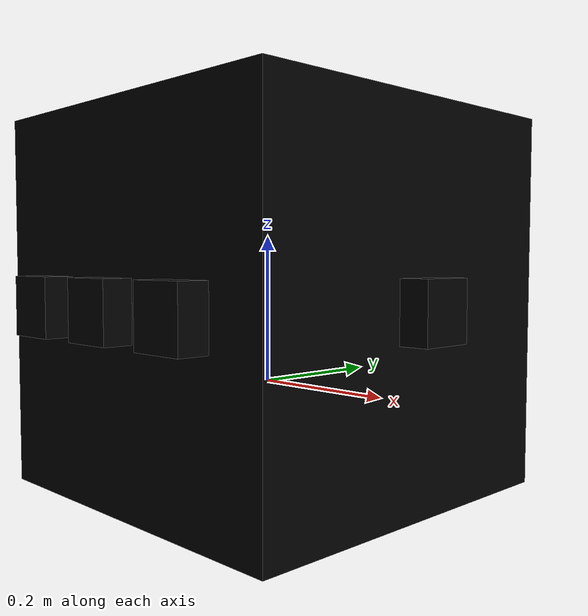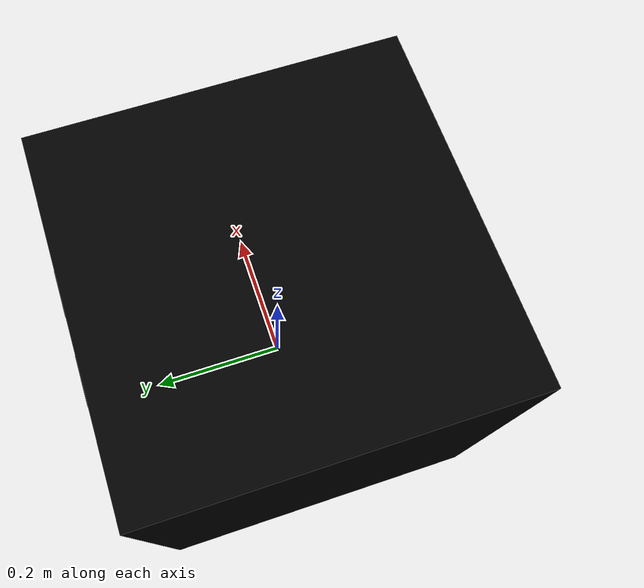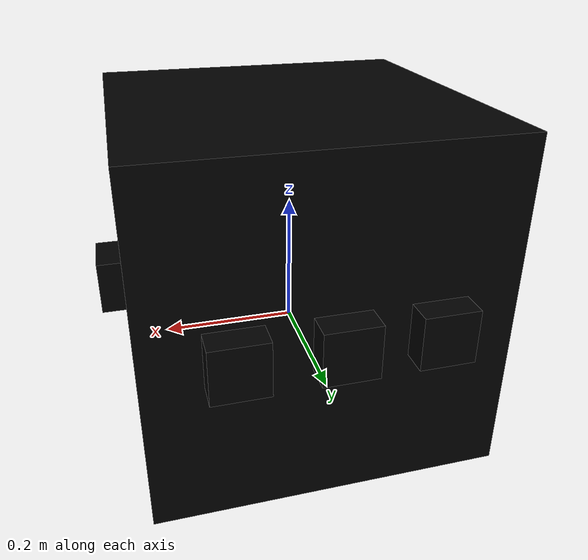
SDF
<?xml version='1.0'?>
<sdf version='1.6'>
  <model name='bot_demo'>
    <link name='hull'>
      <pose frame=''>0.004745 0.002289 0.10857 0 -0 0</pose>
      <inertial>
        <mass>9.55</mass>
        <inertia>
          <ixx>0.166667</ixx>
          <ixy>0</ixy>
          <ixz>0</ixz>
          <iyy>0.166667</iyy>
          <iyz>0</iyz>
          <izz>0.166667</izz>
        </inertia>
        <pose frame=''>0 0 0 0 -0 0</pose>
      </inertial>
      <self_collide>0</self_collide>
      <kinematic>0</kinematic>
      <gravity>1</gravity>
      <enable_wind>0</enable_wind>
      <visual name='visual'>
        <pose frame=''>0 0 0 0 -0 0</pose>
        <geometry>
          <box>
            <size>0.5 0.5 0.5</size>
          </box>
        </geometry>
        <material>
          <ambient>0 0 0 1</ambient>
          <diffuse>0 0 0 1</diffuse>
          <specular>0 0 0 1</specular>
          <emissive>0 0 0 1</emissive>
          <script>
            <name>ModelPreview_1::hull::visual_MATERIAL_</name>
            <uri>__default__</uri>
          </script>
        </material>
        <transparency>0</transparency>
        <cast_shadows>1</cast_shadows>
      </visual>
      <collision name='collision'>
        <laser_retro>0</laser_retro>
        <max_contacts>10</max_contacts>
        <pose frame=''>0 0 0 0 -0 0</pose>
        <geometry>
          <box>
            <size>0.5 0.5 0.5</size>
          </box>
        </geometry>
        <surface>
          <friction>
            <ode>
              <mu>1</mu>
              <mu2>1</mu2>
              <fdir1>0 0 0</fdir1>
              <slip1>0</slip1>
              <slip2>0</slip2>
            </ode>
            <torsional>
              <coefficient>1</coefficient>
              <patch_radius>0</patch_radius>
              <surface_radius>0</surface_radius>
              <use_patch_radius>1</use_patch_radius>
              <ode>
                <slip>0</slip>
              </ode>
            </torsional>
          </friction>
          <bounce>
            <restitution_coefficient>0</restitution_coefficient>
            <threshold>1e+06</threshold>
          </bounce>
          <contact>
            <collide_without_contact>0</collide_without_contact>
            <collide_without_contact_bitmask>1</collide_without_contact_bitmask>
            <collide_bitmask>1</collide_bitmask>
            <ode>
              <soft_cfm>0</soft_cfm>
              <soft_erp>0.2</soft_erp>
              <kp>1e+13</kp>
              <kd>1</kd>
              <max_vel>0.01</max_vel>
              <min_depth>0</min_depth>
            </ode>
            <bullet>
              <split_impulse>1</split_impulse>
              <split_impulse_penetration_threshold>-0.01</split_impulse_penetration_threshold>
              <soft_cfm>0</soft_cfm>
              <soft_erp>0.2</soft_erp>
              <kp>1e+13</kp>
              <kd>1</kd>
            </bullet>
          </contact>
        </surface>
      </collision>
    </link>
    <link name='thruster_1'>
      <pose frame=''>-0.132492 0.251268 0.10857 0 -0 0</pose>
      <inertial>
        <mass>0.39</mass>
        <inertia>
          <ixx>0.166667</ixx>
          <ixy>0</ixy>
          <ixz>0</ixz>
          <iyy>0.166667</iyy>
          <iyz>0</iyz>
          <izz>0.166667</izz>
        </inertia>
        <pose frame=''>0 0 0 0 -0 0</pose>
      </inertial>
      <self_collide>0</self_collide>
      <kinematic>0</kinematic>
      <gravity>1</gravity>
      <enable_wind>0</enable_wind>
      <visual name='visual'>
        <pose frame=''>0 0 0 0 -0 0</pose>
        <geometry>
          <box>
            <size>0.077 0.077 0.077</size>
          </box>
        </geometry>
        <material>
          <ambient>0 0 0 1</ambient>
          <diffuse>0 0 0 1</diffuse>
          <specular>0 0 0 1</specular>
          <emissive>1 1 1 1</emissive>
          <script>
            <name>ModelPreview_1::thruster_1::visual_MATERIAL_</name>
            <uri>__default__</uri>
          </script>
        </material>
        <transparency>0</transparency>
        <cast_shadows>1</cast_shadows>
      </visual>
      <collision name='collision'>
        <laser_retro>0</laser_retro>
        <max_contacts>10</max_contacts>
        <pose frame=''>0 0 0 0 -0 0</pose>
        <geometry>
          <box>
            <size>0.077 0.077 0.077</size>
          </box>
        </geometry>
        <surface>
          <friction>
            <ode>
              <mu>1</mu>
              <mu2>1</mu2>
              <fdir1>0 0 0</fdir1>
              <slip1>0</slip1>
              <slip2>0</slip2>
            </ode>
            <torsional>
              <coefficient>1</coefficient>
              <patch_radius>0</patch_radius>
              <surface_radius>0</surface_radius>
              <use_patch_radius>1</use_patch_radius>
              <ode>
                <slip>0</slip>
              </ode>
            </torsional>
          </friction>
          <bounce>
            <restitution_coefficient>0</restitution_coefficient>
            <threshold>1e+06</threshold>
          </bounce>
          <contact>
            <collide_without_contact>0</collide_without_contact>
            <collide_without_contact_bitmask>1</collide_without_contact_bitmask>
            <collide_bitmask>1</collide_bitmask>
            <ode>
              <soft_cfm>0</soft_cfm>
              <soft_erp>0.2</soft_erp>
              <kp>1e+13</kp>
              <kd>1</kd>
              <max_vel>0.01</max_vel>
              <min_depth>0</min_depth>
            </ode>
            <bullet>
              <split_impulse>1</split_impulse>
              <split_impulse_penetration_threshold>-0.01</split_impulse_penetration_threshold>
              <soft_cfm>0</soft_cfm>
              <soft_erp>0.2</soft_erp>
              <kp>1e+13</kp>
              <kd>1</kd>
            </bullet>
          </contact>
        </surface>
      </collision>
    </link>
    <link name='thruster_2'>
      <pose frame=''>-0.134788 -0.247148 0.10857 0 -0 0</pose>
      <inertial>
        <mass>0.39</mass>
        <inertia>
          <ixx>0.166667</ixx>
          <ixy>0</ixy>
          <ixz>0</ixz>
          <iyy>0.166667</iyy>
          <iyz>0</iyz>
          <izz>0.166667</izz>
        </inertia>
        <pose frame=''>0 0 0 0 -0 0</pose>
      </inertial>
      <self_collide>0</self_collide>
      <kinematic>0</kinematic>
      <gravity>1</gravity>
      <enable_wind>0</enable_wind>
      <visual name='visual'>
        <pose frame=''>0 0 0 0 -0 0</pose>
        <geometry>
          <box>
            <size>0.077 0.077 0.077</size>
          </box>
        </geometry>
        <material>
          <ambient>0 0 0 1</ambient>
          <diffuse>0 0 0 1</diffuse>
          <specular>0 0 0 1</specular>
          <emissive>1 1 1 1</emissive>
          <script>
            <name>ModelPreview_1::thruster_2::visual_MATERIAL_</name>
            <uri>__default__</uri>
          </script>
        </material>
        <transparency>0</transparency>
        <cast_shadows>1</cast_shadows>
      </visual>
      <collision name='collision'>
        <laser_retro>0</laser_retro>
        <max_contacts>10</max_contacts>
        <pose frame=''>0 0 0 0 -0 0</pose>
        <geometry>
          <box>
            <size>0.077 0.077 0.077</size>
          </box>
        </geometry>
        <surface>
          <friction>
            <ode>
              <mu>1</mu>
              <mu2>1</mu2>
              <fdir1>0 0 0</fdir1>
              <slip1>0</slip1>
              <slip2>0</slip2>
            </ode>
            <torsional>
              <coefficient>1</coefficient>
              <patch_radius>0</patch_radius>
              <surface_radius>0</surface_radius>
              <use_patch_radius>1</use_patch_radius>
              <ode>
                <slip>0</slip>
              </ode>
            </torsional>
          </friction>
          <bounce>
            <restitution_coefficient>0</restitution_coefficient>
            <threshold>1e+06</threshold>
          </bounce>
          <contact>
            <collide_without_contact>0</collide_without_contact>
            <collide_without_contact_bitmask>1</collide_without_contact_bitmask>
            <collide_bitmask>1</collide_bitmask>
            <ode>
              <soft_cfm>0</soft_cfm>
              <soft_erp>0.2</soft_erp>
              <kp>1e+13</kp>
              <kd>1</kd>
              <max_vel>0.01</max_vel>
              <min_depth>0</min_depth>
            </ode>
            <bullet>
              <split_impulse>1</split_impulse>
              <split_impulse_penetration_threshold>-0.01</split_impulse_penetration_threshold>
              <soft_cfm>0</soft_cfm>
              <soft_erp>0.2</soft_erp>
              <kp>1e+13</kp>
              <kd>1</kd>
            </bullet>
          </contact>
        </surface>
      </collision>
    </link>
    <link name='thruster_3'>
      <pose frame=''>0.254286 0.002289 0.10857 0 -0 0</pose>
      <inertial>
        <mass>0.39</mass>
        <inertia>
          <ixx>0.166667</ixx>
          <ixy>0</ixy>
          <ixz>0</ixz>
          <iyy>0.166667</iyy>
          <iyz>0</iyz>
          <izz>0.166667</izz>
        </inertia>
        <pose frame=''>0 0 0 0 -0 0</pose>
      </inertial>
      <self_collide>0</self_collide>
      <kinematic>0</kinematic>
      <gravity>1</gravity>
      <enable_wind>0</enable_wind>
      <visual name='visual'>
        <pose frame=''>0 0 0 0 -0 0</pose>
        <geometry>
          <box>
            <size>0.077 0.077 0.077</size>
          </box>
        </geometry>
        <material>
          <ambient>0 0 0 1</ambient>
          <diffuse>0 0 0 1</diffuse>
          <specular>0 0 0 1</specular>
          <emissive>1 1 1 1</emissive>
          <script>
            <name>ModelPreview_1::thruster_3::visual_MATERIAL_</name>
            <uri>__default__</uri>
          </script>
        </material>
        <transparency>0</transparency>
        <cast_shadows>1</cast_shadows>
      </visual>
      <collision name='collision'>
        <laser_retro>0</laser_retro>
        <max_contacts>10</max_contacts>
        <pose frame=''>0 0 0 0 -0 0</pose>
        <geometry>
          <box>
            <size>0.077 0.077 0.077</size>
          </box>
        </geometry>
        <surface>
          <friction>
            <ode>
              <mu>1</mu>
              <mu2>1</mu2>
              <fdir1>0 0 0</fdir1>
              <slip1>0</slip1>
              <slip2>0</slip2>
            </ode>
            <torsional>
              <coefficient>1</coefficient>
              <patch_radius>0</patch_radius>
              <surface_radius>0</surface_radius>
              <use_patch_radius>1</use_patch_radius>
              <ode>
                <slip>0</slip>
              </ode>
            </torsional>
          </friction>
          <bounce>
            <restitution_coefficient>0</restitution_coefficient>
            <threshold>1e+06</threshold>
          </bounce>
          <contact>
            <collide_without_contact>0</collide_without_contact>
            <collide_without_contact_bitmask>1</collide_without_contact_bitmask>
            <collide_bitmask>1</collide_bitmask>
            <ode>
              <soft_cfm>0</soft_cfm>
              <soft_erp>0.2</soft_erp>
              <kp>1e+13</kp>
              <kd>1</kd>
              <max_vel>0.01</max_vel>
              <min_depth>0</min_depth>
            </ode>
            <bullet>
              <split_impulse>1</split_impulse>
              <split_impulse_penetration_threshold>-0.01</split_impulse_penetration_threshold>
              <soft_cfm>0</soft_cfm>
              <soft_erp>0.2</soft_erp>
              <kp>1e+13</kp>
              <kd>1</kd>
            </bullet>
          </contact>
        </surface>
      </collision>
    </link>
    <link name='thruster_4'>
      <pose frame=''>-0.002381 0.252579 0.10857 0 -0 0</pose>
      <inertial>
        <mass>0.39</mass>
        <inertia>
          <ixx>0.166667</ixx>
          <ixy>0</ixy>
          <ixz>0</ixz>
          <iyy>0.166667</iyy>
          <iyz>0</iyz>
          <izz>0.166667</izz>
        </inertia>
        <pose frame=''>0 0 0 0 -0 0</pose>
      </inertial>
      <self_collide>0</self_collide>
      <kinematic>0</kinematic>
      <gravity>1</gravity>
      <enable_wind>0</enable_wind>
      <visual name='visual'>
        <pose frame=''>0 0 0 0 -0 0</pose>
        <geometry>
          <box>
            <size>0.077 0.077 0.077</size>
          </box>
        </geometry>
        <material>
          <ambient>0 0 0 1</ambient>
          <diffuse>0 0 0 1</diffuse>
          <specular>0 0 0 1</specular>
          <emissive>1 1 1 1</emissive>
          <script>
            <name>ModelPreview_1::thruster_4::visual_MATERIAL_</name>
            <uri>__default__</uri>
          </script>
        </material>
        <transparency>0</transparency>
        <cast_shadows>1</cast_shadows>
      </visual>
      <collision name='collision'>
        <laser_retro>0</laser_retro>
        <max_contacts>10</max_contacts>
        <pose frame=''>0 0 0 0 -0 0</pose>
        <geometry>
          <box>
            <size>0.077 0.077 0.077</size>
          </box>
        </geometry>
        <surface>
          <friction>
            <ode>
              <mu>1</mu>
              <mu2>1</mu2>
              <fdir1>0 0 0</fdir1>
              <slip1>0</slip1>
              <slip2>0</slip2>
            </ode>
            <torsional>
              <coefficient>1</coefficient>
              <patch_radius>0</patch_radius>
              <surface_radius>0</surface_radius>
              <use_patch_radius>1</use_patch_radius>
              <ode>
                <slip>0</slip>
              </ode>
            </torsional>
          </friction>
          <bounce>
            <restitution_coefficient>0</restitution_coefficient>
            <threshold>1e+06</threshold>
          </bounce>
          <contact>
            <collide_without_contact>0</collide_without_contact>
            <collide_without_contact_bitmask>1</collide_without_contact_bitmask>
            <collide_bitmask>1</collide_bitmask>
            <ode>
              <soft_cfm>0</soft_cfm>
              <soft_erp>0.2</soft_erp>
              <kp>1e+13</kp>
              <kd>1</kd>
              <max_vel>0.01</max_vel>
              <min_depth>0</min_depth>
            </ode>
            <bullet>
              <split_impulse>1</split_impulse>
              <split_impulse_penetration_threshold>-0.01</split_impulse_penetration_threshold>
              <soft_cfm>0</soft_cfm>
              <soft_erp>0.2</soft_erp>
              <kp>1e+13</kp>
              <kd>1</kd>
            </bullet>
          </contact>
        </surface>
      </collision>
    </link>
    <link name='thruster_5'>
      <pose frame=''>-0.002381 -0.247148 0.10857 0 -0 0</pose>
      <inertial>
        <mass>0.39</mass>
        <inertia>
          <ixx>0.166667</ixx>
          <ixy>0</ixy>
          <ixz>0</ixz>
          <iyy>0.166667</iyy>
          <iyz>0</iyz>
          <izz>0.166667</izz>
        </inertia>
        <pose frame=''>0 0 0 0 -0 0</pose>
      </inertial>
      <self_collide>0</self_collide>
      <kinematic>0</kinematic>
      <gravity>1</gravity>
      <enable_wind>0</enable_wind>
      <visual name='visual'>
        <pose frame=''>0 0 0 0 -0 0</pose>
        <geometry>
          <box>
            <size>0.077 0.077 0.077</size>
          </box>
        </geometry>
        <material>
          <ambient>0 0 0 1</ambient>
          <diffuse>0 0 0 1</diffuse>
          <specular>0 0 0 1</specular>
          <emissive>1 1 1 1</emissive>
          <script>
            <name>ModelPreview_1::thruster_5::visual_MATERIAL_</name>
            <uri>__default__</uri>
          </script>
        </material>
        <transparency>0</transparency>
        <cast_shadows>1</cast_shadows>
      </visual>
      <collision name='collision'>
        <laser_retro>0</laser_retro>
        <max_contacts>10</max_contacts>
        <pose frame=''>0 0 0 0 -0 0</pose>
        <geometry>
          <box>
            <size>0.077 0.077 0.077</size>
          </box>
        </geometry>
        <surface>
          <friction>
            <ode>
              <mu>1</mu>
              <mu2>1</mu2>
              <fdir1>0 0 0</fdir1>
              <slip1>0</slip1>
              <slip2>0</slip2>
            </ode>
            <torsional>
              <coefficient>1</coefficient>
              <patch_radius>0</patch_radius>
              <surface_radius>0</surface_radius>
              <use_patch_radius>1</use_patch_radius>
              <ode>
                <slip>0</slip>
              </ode>
            </torsional>
          </friction>
          <bounce>
            <restitution_coefficient>0</restitution_coefficient>
            <threshold>1e+06</threshold>
          </bounce>
          <contact>
            <collide_without_contact>0</collide_without_contact>
            <collide_without_contact_bitmask>1</collide_without_contact_bitmask>
            <collide_bitmask>1</collide_bitmask>
            <ode>
              <soft_cfm>0</soft_cfm>
              <soft_erp>0.2</soft_erp>
              <kp>1e+13</kp>
              <kd>1</kd>
              <max_vel>0.01</max_vel>
              <min_depth>0</min_depth>
            </ode>
            <bullet>
              <split_impulse>1</split_impulse>
              <split_impulse_penetration_threshold>-0.01</split_impulse_penetration_threshold>
              <soft_cfm>0</soft_cfm>
              <soft_erp>0.2</soft_erp>
              <kp>1e+13</kp>
              <kd>1</kd>
            </bullet>
          </contact>
        </surface>
      </collision>
    </link>
    <link name='thruster_6'>
      <pose frame=''>0.004745 0.002289 -0.140467 0 -0 0</pose>
      <inertial>
        <mass>0.39</mass>
        <inertia>
          <ixx>0.166667</ixx>
          <ixy>0</ixy>
          <ixz>0</ixz>
          <iyy>0.166667</iyy>
          <iyz>0</iyz>
          <izz>0.166667</izz>
        </inertia>
        <pose frame=''>0 0 0 0 -0 0</pose>
      </inertial>
      <self_collide>0</self_collide>
      <kinematic>0</kinematic>
      <gravity>1</gravity>
      <enable_wind>0</enable_wind>
      <visual name='visual'>
        <pose frame=''>0 0 0 0 -0 0</pose>
        <geometry>
          <box>
            <size>0.077 0.077 0.077</size>
          </box>
        </geometry>
        <material>
          <ambient>0 0 0 1</ambient>
          <diffuse>0 0 0 1</diffuse>
          <specular>0 0 0 1</specular>
          <emissive>1 1 1 1</emissive>
          <script>
            <name>ModelPreview_1::thruster_6::visual_MATERIAL_</name>
            <uri>__default__</uri>
          </script>
        </material>
        <transparency>0</transparency>
        <cast_shadows>1</cast_shadows>
      </visual>
      <collision name='collision'>
        <laser_retro>0</laser_retro>
        <max_contacts>10</max_contacts>
        <pose frame=''>0 0 0 0 -0 0</pose>
        <geometry>
          <box>
            <size>0.077 0.077 0.077</size>
          </box>
        </geometry>
        <surface>
          <friction>
            <ode>
              <mu>1</mu>
              <mu2>1</mu2>
              <fdir1>0 0 0</fdir1>
              <slip1>0</slip1>
              <slip2>0</slip2>
            </ode>
            <torsional>
              <coefficient>1</coefficient>
              <patch_radius>0</patch_radius>
              <surface_radius>0</surface_radius>
              <use_patch_radius>1</use_patch_radius>
              <ode>
                <slip>0</slip>
              </ode>
            </torsional>
          </friction>
          <bounce>
            <restitution_coefficient>0</restitution_coefficient>
            <threshold>1e+06</threshold>
          </bounce>
          <contact>
            <collide_without_contact>0</collide_without_contact>
            <collide_without_contact_bitmask>1</collide_without_contact_bitmask>
            <collide_bitmask>1</collide_bitmask>
            <ode>
              <soft_cfm>0</soft_cfm>
              <soft_erp>0.2</soft_erp>
              <kp>1e+13</kp>
              <kd>1</kd>
              <max_vel>0.01</max_vel>
              <min_depth>0</min_depth>
            </ode>
            <bullet>
              <split_impulse>1</split_impulse>
              <split_impulse_penetration_threshold>-0.01</split_impulse_penetration_threshold>
              <soft_cfm>0</soft_cfm>
              <soft_erp>0.2</soft_erp>
              <kp>1e+13</kp>
              <kd>1</kd>
            </bullet>
          </contact>
        </surface>
      </collision>
    </link>
    <link name='thruster_p4'>
      <pose frame=''>0.136164 0.252586 0.10857 0 -0 0</pose>
      <inertial>
        <mass>0.39</mass>
        <inertia>
          <ixx>0.166667</ixx>
          <ixy>0</ixy>
          <ixz>0</ixz>
          <iyy>0.166667</iyy>
          <iyz>0</iyz>
          <izz>0.166667</izz>
        </inertia>
        <pose frame=''>0 0 0 0 -0 0</pose>
      </inertial>
      <self_collide>0</self_collide>
      <kinematic>0</kinematic>
      <gravity>1</gravity>
      <enable_wind>0</enable_wind>
      <visual name='visual'>
        <pose frame=''>0 0 0 0 -0 0</pose>
        <geometry>
          <box>
            <size>0.077 0.077 0.077</size>
          </box>
        </geometry>
        <material>
          <ambient>0 0 0 1</ambient>
          <diffuse>0 0 0 1</diffuse>
          <specular>0 0 0 1</specular>
          <emissive>1 1 1 1</emissive>
          <script>
            <name>ModelPreview_1::thruster_p4::visual_MATERIAL_</name>
            <uri>__default__</uri>
          </script>
        </material>
        <transparency>0</transparency>
        <cast_shadows>1</cast_shadows>
      </visual>
      <collision name='collision'>
        <laser_retro>0</laser_retro>
        <max_contacts>10</max_contacts>
        <pose frame=''>0 0 0 0 -0 0</pose>
        <geometry>
          <box>
            <size>0.077 0.077 0.077</size>
          </box>
        </geometry>
        <surface>
          <friction>
            <ode>
              <mu>1</mu>
              <mu2>1</mu2>
              <fdir1>0 0 0</fdir1>
              <slip1>0</slip1>
              <slip2>0</slip2>
            </ode>
            <torsional>
              <coefficient>1</coefficient>
              <patch_radius>0</patch_radius>
              <surface_radius>0</surface_radius>
              <use_patch_radius>1</use_patch_radius>
              <ode>
                <slip>0</slip>
              </ode>
            </torsional>
          </friction>
          <bounce>
            <restitution_coefficient>0</restitution_coefficient>
            <threshold>1e+06</threshold>
          </bounce>
          <contact>
            <collide_without_contact>0</collide_without_contact>
            <collide_without_contact_bitmask>1</collide_without_contact_bitmask>
            <collide_bitmask>1</collide_bitmask>
            <ode>
              <soft_cfm>0</soft_cfm>
              <soft_erp>0.2</soft_erp>
              <kp>1e+13</kp>
              <kd>1</kd>
              <max_vel>0.01</max_vel>
              <min_depth>0</min_depth>
            </ode>
            <bullet>
              <split_impulse>1</split_impulse>
              <split_impulse_penetration_threshold>-0.01</split_impulse_penetration_threshold>
              <soft_cfm>0</soft_cfm>
              <soft_erp>0.2</soft_erp>
              <kp>1e+13</kp>
              <kd>1</kd>
            </bullet>
          </contact>
        </surface>
      </collision>
    </link>
    <link name='thruster_p5'>
      <pose frame=''>0.136043 -0.248527 0.10857 0 -0 0</pose>
      <inertial>
        <mass>0.39</mass>
        <inertia>
          <ixx>0.166667</ixx>
          <ixy>0</ixy>
          <ixz>0</ixz>
          <iyy>0.166667</iyy>
          <iyz>0</iyz>
          <izz>0.166667</izz>
        </inertia>
        <pose frame=''>0 0 0 0 -0 0</pose>
      </inertial>
      <self_collide>0</self_collide>
      <kinematic>0</kinematic>
      <gravity>1</gravity>
      <enable_wind>0</enable_wind>
      <visual name='visual'>
        <pose frame=''>0 0 0 0 -0 0</pose>
        <geometry>
          <box>
            <size>0.077 0.077 0.077</size>
          </box>
        </geometry>
        <material>
          <ambient>0 0 0 1</ambient>
          <diffuse>0 0 0 1</diffuse>
          <specular>0 0 0 1</specular>
          <emissive>1 1 1 1</emissive>
          <script>
            <name>ModelPreview_1::thruster_p5::visual_MATERIAL_</name>
            <uri>__default__</uri>
          </script>
        </material>
        <transparency>0</transparency>
        <cast_shadows>1</cast_shadows>
      </visual>
      <collision name='collision'>
        <laser_retro>0</laser_retro>
        <max_contacts>10</max_contacts>
        <pose frame=''>0 0 0 0 -0 0</pose>
        <geometry>
          <box>
            <size>0.077 0.077 0.077</size>
          </box>
        </geometry>
        <surface>
          <friction>
            <ode>
              <mu>1</mu>
              <mu2>1</mu2>
              <fdir1>0 0 0</fdir1>
              <slip1>0</slip1>
              <slip2>0</slip2>
            </ode>
            <torsional>
              <coefficient>1</coefficient>
              <patch_radius>0</patch_radius>
              <surface_radius>0</surface_radius>
              <use_patch_radius>1</use_patch_radius>
              <ode>
                <slip>0</slip>
              </ode>
            </torsional>
          </friction>
          <bounce>
            <restitution_coefficient>0</restitution_coefficient>
            <threshold>1e+06</threshold>
          </bounce>
          <contact>
            <collide_without_contact>0</collide_without_contact>
            <collide_without_contact_bitmask>1</collide_without_contact_bitmask>
            <collide_bitmask>1</collide_bitmask>
            <ode>
              <soft_cfm>0</soft_cfm>
              <soft_erp>0.2</soft_erp>
              <kp>1e+13</kp>
              <kd>1</kd>
              <max_vel>0.01</max_vel>
              <min_depth>0</min_depth>
            </ode>
            <bullet>
              <split_impulse>1</split_impulse>
              <split_impulse_penetration_threshold>-0.01</split_impulse_penetration_threshold>
              <soft_cfm>0</soft_cfm>
              <soft_erp>0.2</soft_erp>
              <kp>1e+13</kp>
              <kd>1</kd>
            </bullet>
          </contact>
        </surface>
      </collision>
    </link>
    <joint name='hull_JOINT_0' type='fixed'>
      <parent>hull</parent>
      <child>thruster_1</child>
      <pose frame=''>0 0 0 0 -0 0</pose>
      <physics>
        <ode>
          <limit>
            <cfm>0</cfm>
            <erp>0.2</erp>
          </limit>
          <suspension>
            <cfm>0</cfm>
            <erp>0.2</erp>
          </suspension>
        </ode>
      </physics>
    </joint>
    <joint name='hull_JOINT_1' type='fixed'>
      <parent>hull</parent>
      <child>thruster_2</child>
      <pose frame=''>0 0 0 0 -0 0</pose>
      <physics>
        <ode>
          <limit>
            <cfm>0</cfm>
            <erp>0.2</erp>
          </limit>
          <suspension>
            <cfm>0</cfm>
            <erp>0.2</erp>
          </suspension>
        </ode>
      </physics>
    </joint>
    <joint name='hull_JOINT_2' type='fixed'>
      <parent>hull</parent>
      <child>thruster_3</child>
      <pose frame=''>0 0 0 0 -0 0</pose>
      <physics>
        <ode>
          <limit>
            <cfm>0</cfm>
            <erp>0.2</erp>
          </limit>
          <suspension>
            <cfm>0</cfm>
            <erp>0.2</erp>
          </suspension>
        </ode>
      </physics>
    </joint>
    <joint name='hull_JOINT_3' type='fixed'>
      <parent>hull</parent>
      <child>thruster_4</child>
      <pose frame=''>0 0 0 0 -0 0</pose>
      <physics>
        <ode>
          <limit>
            <cfm>0</cfm>
            <erp>0.2</erp>
          </limit>
          <suspension>
            <cfm>0</cfm>
            <erp>0.2</erp>
          </suspension>
        </ode>
      </physics>
    </joint>
    <joint name='hull_JOINT_4' type='fixed'>
      <parent>hull</parent>
      <child>thruster_4</child>
      <pose frame=''>0 0 0 0 -0 0</pose>
      <physics>
        <ode>
          <limit>
            <cfm>0</cfm>
            <erp>0.2</erp>
          </limit>
          <suspension>
            <cfm>0</cfm>
            <erp>0.2</erp>
          </suspension>
        </ode>
      </physics>
    </joint>
    <joint name='hull_JOINT_5' type='fixed'>
      <parent>hull</parent>
      <child>thruster_5</child>
      <pose frame=''>0 0 0 0 -0 0</pose>
      <physics>
        <ode>
          <limit>
            <cfm>0</cfm>
            <erp>0.2</erp>
          </limit>
          <suspension>
            <cfm>0</cfm>
            <erp>0.2</erp>
          </suspension>
        </ode>
      </physics>
    </joint>
    <joint name='hull_JOINT_6' type='fixed'>
      <parent>hull</parent>
      <child>thruster_6</child>
      <pose frame=''>0 0 0 0 -0 0</pose>
      <physics>
        <ode>
          <limit>
            <cfm>0</cfm>
            <erp>0.2</erp>
          </limit>
          <suspension>
            <cfm>0</cfm>
            <erp>0.2</erp>
          </suspension>
        </ode>
      </physics>
    </joint>
    <joint name='hull_JOINT_7' type='fixed'>
      <parent>hull</parent>
      <child>thruster_p4</child>
      <pose frame=''>0 0 0 0 -0 0</pose>
      <physics>
        <ode>
          <limit>
            <cfm>0</cfm>
            <erp>0.2</erp>
          </limit>
          <suspension>
            <cfm>0</cfm>
            <erp>0.2</erp>
          </suspension>
        </ode>
      </physics>
    </joint>
    <joint name='hull_JOINT_8' type='fixed'>
      <parent>hull</parent>
      <child>thruster_p5</child>
      <pose frame=''>0 0 0 0 -0 0</pose>
      <physics>
        <ode>
          <limit>
            <cfm>0</cfm>
            <erp>0.2</erp>
          </limit>
          <suspension>
            <cfm>0</cfm>
            <erp>0.2</erp>
          </suspension>
        </ode>
      </physics>
    </joint>
    <static>0</static>
    <allow_auto_disable>1</allow_auto_disable>
  </model>
</sdf>
